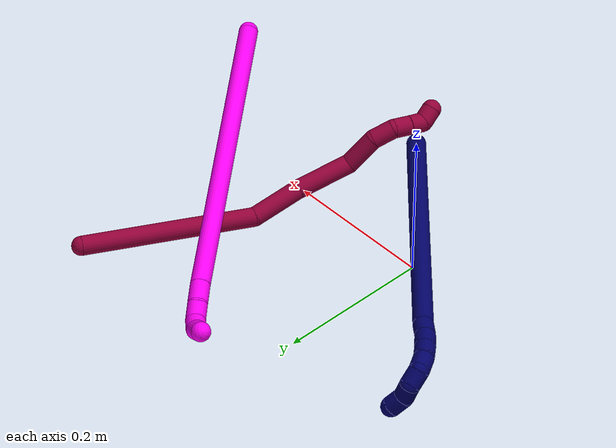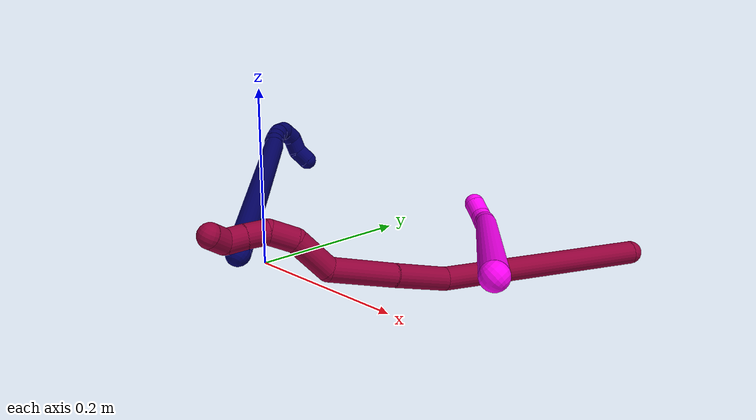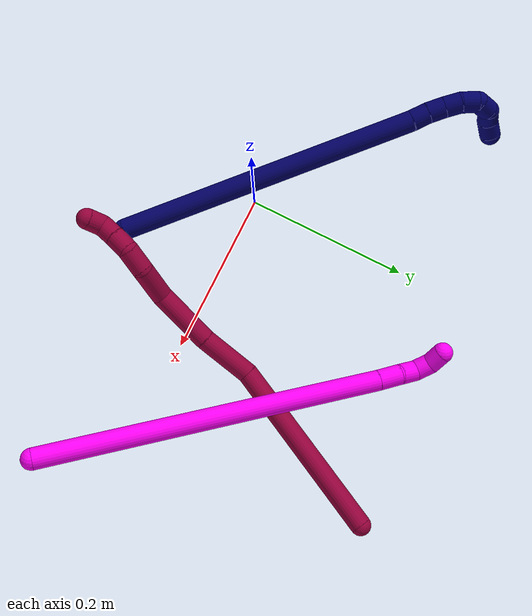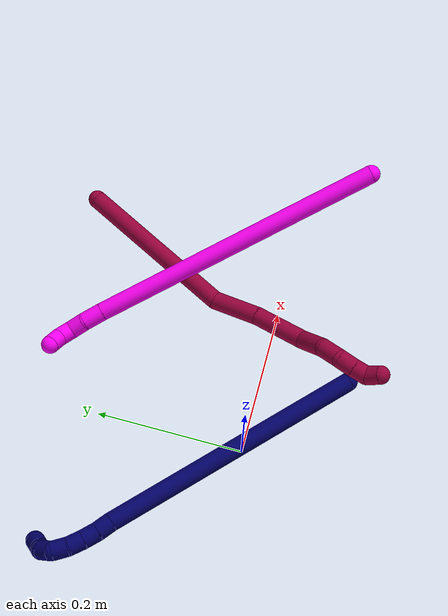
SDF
<sdf version="1.7">
 <world name="default">
  <model name="7">
   <static>0</static>
   <link name="7">
    <collision name="collision-cylinder-e_1_1_4">
     <pose>-0.100532 -0.030173 0.145329 0.204709 -0.595338 -0.063001</pose>
     <geometry><cylinder><radius>0.0125</radius><length>0.35854</length></cylinder></geometry>
     <surface>
      <friction><ode><mu>1.16</mu><mu2>1.16</mu2><slip1>0</slip1><slip2>0</slip2></ode></friction>
      <contact><ode><kp>1e+06</kp><kd>1</kd><max_vel>0</max_vel><min_depth>0.001</min_depth></ode></contact>
     </surface>
    </collision>
    <visual name="visual-cylinder-e_1_1_4">
     <pose>-0.100532 -0.030173 0.145329 0.204709 -0.595338 -0.063001</pose>
     <geometry><cylinder><radius>0.0125</radius><length>0.35854</length></cylinder></geometry>
     <material><ambient>0.003922 0 0.403922 1</ambient></material>
    </visual>
    <collision name="collision-cylinder-e_2_4_5">
     <pose>-0.206787 -0.062942 0.298716 0.311736 -0.594405 -0.096183</pose>
     <geometry><cylinder><radius>0.0125</radius><length>0.020437</length></cylinder></geometry>
     <surface>
      <friction><ode><mu>1.16</mu><mu2>1.16</mu2><slip1>0</slip1><slip2>0</slip2></ode></friction>
      <contact><ode><kp>1e+06</kp><kd>1</kd><max_vel>0</max_vel><min_depth>0.001</min_depth></ode></contact>
     </surface>
    </collision>
    <visual name="visual-cylinder-e_2_4_5">
     <pose>-0.206787 -0.062942 0.298716 0.311736 -0.594405 -0.096183</pose>
     <geometry><cylinder><radius>0.0125</radius><length>0.020437</length></cylinder></geometry>
     <material><ambient>0.003922 0 0.403922 1</ambient></material>
    </visual>
    <collision name="collision-cylinder-e_3_5_6">
     <pose>-0.218155 -0.067028 0.315092 0.177146 -0.588919 -0.053852</pose>
     <geometry><cylinder><radius>0.0125</radius><length>0.020325</length></cylinder></geometry>
     <surface>
      <friction><ode><mu>1.16</mu><mu2>1.16</mu2><slip1>0</slip1><slip2>0</slip2></ode></friction>
      <contact><ode><kp>1e+06</kp><kd>1</kd><max_vel>0</max_vel><min_depth>0.001</min_depth></ode></contact>
     </surface>
    </collision>
    <visual name="visual-cylinder-e_3_5_6">
     <pose>-0.218155 -0.067028 0.315092 0.177146 -0.588919 -0.053852</pose>
     <geometry><cylinder><radius>0.0125</radius><length>0.020325</length></cylinder></geometry>
     <material><ambient>0.003922 0 0.403922 1</ambient></material>
    </visual>
    <collision name="collision-cylinder-e_4_6_7">
     <pose>-0.229069 -0.069361 0.332001 0.09796 -0.548055 -0.027557</pose>
     <geometry><cylinder><radius>0.0125</radius><length>0.020228</length></cylinder></geometry>
     <surface>
      <friction><ode><mu>1.16</mu><mu2>1.16</mu2><slip1>0</slip1><slip2>0</slip2></ode></friction>
      <contact><ode><kp>1e+06</kp><kd>1</kd><max_vel>0</max_vel><min_depth>0.001</min_depth></ode></contact>
     </surface>
    </collision>
    <visual name="visual-cylinder-e_4_6_7">
     <pose>-0.229069 -0.069361 0.332001 0.09796 -0.548055 -0.027557</pose>
     <geometry><cylinder><radius>0.0125</radius><length>0.020228</length></cylinder></geometry>
     <material><ambient>0.003922 0 0.403922 1</ambient></material>
    </visual>
    <collision name="collision-cylinder-e_5_7_8">
     <pose>-0.240368 -0.068711 0.348545 -0.18582 -0.640323 0.06177</pose>
     <geometry><cylinder><radius>0.0125</radius><length>0.020182</length></cylinder></geometry>
     <surface>
      <friction><ode><mu>1.16</mu><mu2>1.16</mu2><slip1>0</slip1><slip2>0</slip2></ode></friction>
      <contact><ode><kp>1e+06</kp><kd>1</kd><max_vel>0</max_vel><min_depth>0.001</min_depth></ode></contact>
     </surface>
    </collision>
    <visual name="visual-cylinder-e_5_7_8">
     <pose>-0.240368 -0.068711 0.348545 -0.18582 -0.640323 0.06177</pose>
     <geometry><cylinder><radius>0.0125</radius><length>0.020182</length></cylinder></geometry>
     <material><ambient>0.003922 0 0.403922 1</ambient></material>
    </visual>
    <collision name="collision-cylinder-e_6_8_9">
     <pose>-0.254179 -0.061239 0.358853 -1.19544 -0.880703 0.620851</pose>
     <geometry><cylinder><radius>0.0125</radius><length>0.020182</length></cylinder></geometry>
     <surface>
      <friction><ode><mu>1.16</mu><mu2>1.16</mu2><slip1>0</slip1><slip2>0</slip2></ode></friction>
      <contact><ode><kp>1e+06</kp><kd>1</kd><max_vel>0</max_vel><min_depth>0.001</min_depth></ode></contact>
     </surface>
    </collision>
    <visual name="visual-cylinder-e_6_8_9">
     <pose>-0.254179 -0.061239 0.358853 -1.19544 -0.880703 0.620851</pose>
     <geometry><cylinder><radius>0.0125</radius><length>0.020182</length></cylinder></geometry>
     <material><ambient>0.003922 0 0.403922 1</ambient></material>
    </visual>
    <collision name="collision-cylinder-e_7_9_10">
     <pose>-0.269022 -0.04943 0.357157 -2.17789 -0.782582 1.33587</pose>
     <geometry><cylinder><radius>0.0125</radius><length>0.02003</length></cylinder></geometry>
     <surface>
      <friction><ode><mu>1.16</mu><mu2>1.16</mu2><slip1>0</slip1><slip2>0</slip2></ode></friction>
      <contact><ode><kp>1e+06</kp><kd>1</kd><max_vel>0</max_vel><min_depth>0.001</min_depth></ode></contact>
     </surface>
    </collision>
    <visual name="visual-cylinder-e_7_9_10">
     <pose>-0.269022 -0.04943 0.357157 -2.17789 -0.782582 1.33587</pose>
     <geometry><cylinder><radius>0.0125</radius><length>0.02003</length></cylinder></geometry>
     <material><ambient>0.003922 0 0.403922 1</ambient></material>
    </visual>
    <collision name="collision-cylinder-e_8_10_2">
     <pose>-0.280976 -0.034986 0.351466 -1.75899 -0.509007 0.609163</pose>
     <geometry><cylinder><radius>0.0125</radius><length>0.020077</length></cylinder></geometry>
     <surface>
      <friction><ode><mu>1.16</mu><mu2>1.16</mu2><slip1>0</slip1><slip2>0</slip2></ode></friction>
      <contact><ode><kp>1e+06</kp><kd>1</kd><max_vel>0</max_vel><min_depth>0.001</min_depth></ode></contact>
     </surface>
    </collision>
    <visual name="visual-cylinder-e_8_10_2">
     <pose>-0.280976 -0.034986 0.351466 -1.75899 -0.509007 0.609163</pose>
     <geometry><cylinder><radius>0.0125</radius><length>0.020077</length></cylinder></geometry>
     <material><ambient>0.003922 0 0.403922 1</ambient></material>
    </visual>
    <collision name="collision-sphere-2">
     <pose>-0.285868 -0.026375 0.349826 0 -0 0</pose>
     <geometry><sphere><radius>0.0125</radius></sphere></geometry>
     <surface>
      <friction><ode><mu>1.16</mu><mu2>1.16</mu2><slip1>0</slip1><slip2>0</slip2></ode></friction>
      <contact><ode><kp>1e+06</kp><kd>1</kd><max_vel>0</max_vel><min_depth>0.001</min_depth></ode></contact>
     </surface>
    </collision>
    <visual name="visual-sphere-2">
     <pose>-0.285868 -0.026375 0.349826 0 -0 0</pose>
     <geometry><sphere><radius>0.0125</radius></sphere></geometry>
     <material><ambient>0.003922 0 0.403922 1</ambient></material>
    </visual>
    <collision name="collision-sphere-10">
     <pose>-0.276084 -0.043597 0.353106 0 -0 0</pose>
     <geometry><sphere><radius>0.0125</radius></sphere></geometry>
     <surface>
      <friction><ode><mu>1.16</mu><mu2>1.16</mu2><slip1>0</slip1><slip2>0</slip2></ode></friction>
      <contact><ode><kp>1e+06</kp><kd>1</kd><max_vel>0</max_vel><min_depth>0.001</min_depth></ode></contact>
     </surface>
    </collision>
    <visual name="visual-sphere-10">
     <pose>-0.276084 -0.043597 0.353106 0 -0 0</pose>
     <geometry><sphere><radius>0.0125</radius></sphere></geometry>
     <material><ambient>0.003922 0 0.403922 1</ambient></material>
    </visual>
    <collision name="collision-sphere-9">
     <pose>-0.261961 -0.055262 0.361208 0 -0 0</pose>
     <geometry><sphere><radius>0.0125</radius></sphere></geometry>
     <surface>
      <friction><ode><mu>1.16</mu><mu2>1.16</mu2><slip1>0</slip1><slip2>0</slip2></ode></friction>
      <contact><ode><kp>1e+06</kp><kd>1</kd><max_vel>0</max_vel><min_depth>0.001</min_depth></ode></contact>
     </surface>
    </collision>
    <visual name="visual-sphere-9">
     <pose>-0.261961 -0.055262 0.361208 0 -0 0</pose>
     <geometry><sphere><radius>0.0125</radius></sphere></geometry>
     <material><ambient>0.003922 0 0.403922 1</ambient></material>
    </visual>
    <collision name="collision-sphere-4">
     <pose>-0.201065 -0.060345 0.290658 0 -0 0</pose>
     <geometry><sphere><radius>0.0125</radius></sphere></geometry>
     <surface>
      <friction><ode><mu>1.16</mu><mu2>1.16</mu2><slip1>0</slip1><slip2>0</slip2></ode></friction>
      <contact><ode><kp>1e+06</kp><kd>1</kd><max_vel>0</max_vel><min_depth>0.001</min_depth></ode></contact>
     </surface>
    </collision>
    <visual name="visual-sphere-4">
     <pose>-0.201065 -0.060345 0.290658 0 -0 0</pose>
     <geometry><sphere><radius>0.0125</radius></sphere></geometry>
     <material><ambient>0.003922 0 0.403922 1</ambient></material>
    </visual>
    <collision name="collision-sphere-1">
     <geometry><sphere><radius>0.0125</radius></sphere></geometry>
     <surface>
      <friction><ode><mu>1.16</mu><mu2>1.16</mu2><slip1>0</slip1><slip2>0</slip2></ode></friction>
      <contact><ode><kp>1e+06</kp><kd>1</kd><max_vel>0</max_vel><min_depth>0.001</min_depth></ode></contact>
     </surface>
    </collision>
    <visual name="visual-sphere-1">
     <geometry><sphere><radius>0.0125</radius></sphere></geometry>
     <material><ambient>0.003922 0 0.403922 1</ambient></material>
    </visual>
    <collision name="collision-sphere-8">
     <pose>-0.246397 -0.067215 0.356498 0 -0 0</pose>
     <geometry><sphere><radius>0.0125</radius></sphere></geometry>
     <surface>
      <friction><ode><mu>1.16</mu><mu2>1.16</mu2><slip1>0</slip1><slip2>0</slip2></ode></friction>
      <contact><ode><kp>1e+06</kp><kd>1</kd><max_vel>0</max_vel><min_depth>0.001</min_depth></ode></contact>
     </surface>
    </collision>
    <visual name="visual-sphere-8">
     <pose>-0.246397 -0.067215 0.356498 0 -0 0</pose>
     <geometry><sphere><radius>0.0125</radius></sphere></geometry>
     <material><ambient>0.003922 0 0.403922 1</ambient></material>
    </visual>
    <collision name="collision-sphere-5">
     <pose>-0.21251 -0.065539 0.306774 0 -0 0</pose>
     <geometry><sphere><radius>0.0125</radius></sphere></geometry>
     <surface>
      <friction><ode><mu>1.16</mu><mu2>1.16</mu2><slip1>0</slip1><slip2>0</slip2></ode></friction>
      <contact><ode><kp>1e+06</kp><kd>1</kd><max_vel>0</max_vel><min_depth>0.001</min_depth></ode></contact>
     </surface>
    </collision>
    <visual name="visual-sphere-5">
     <pose>-0.21251 -0.065539 0.306774 0 -0 0</pose>
     <geometry><sphere><radius>0.0125</radius></sphere></geometry>
     <material><ambient>0.003922 0 0.403922 1</ambient></material>
    </visual>
    <collision name="collision-sphere-6">
     <pose>-0.2238 -0.068517 0.32341 0 -0 0</pose>
     <geometry><sphere><radius>0.0125</radius></sphere></geometry>
     <surface>
      <friction><ode><mu>1.16</mu><mu2>1.16</mu2><slip1>0</slip1><slip2>0</slip2></ode></friction>
      <contact><ode><kp>1e+06</kp><kd>1</kd><max_vel>0</max_vel><min_depth>0.001</min_depth></ode></contact>
     </surface>
    </collision>
    <visual name="visual-sphere-6">
     <pose>-0.2238 -0.068517 0.32341 0 -0 0</pose>
     <geometry><sphere><radius>0.0125</radius></sphere></geometry>
     <material><ambient>0.003922 0 0.403922 1</ambient></material>
    </visual>
    <collision name="collision-sphere-7">
     <pose>-0.234339 -0.070206 0.340592 0 -0 0</pose>
     <geometry><sphere><radius>0.0125</radius></sphere></geometry>
     <surface>
      <friction><ode><mu>1.16</mu><mu2>1.16</mu2><slip1>0</slip1><slip2>0</slip2></ode></friction>
      <contact><ode><kp>1e+06</kp><kd>1</kd><max_vel>0</max_vel><min_depth>0.001</min_depth></ode></contact>
     </surface>
    </collision>
    <visual name="visual-sphere-7">
     <pose>-0.234339 -0.070206 0.340592 0 -0 0</pose>
     <geometry><sphere><radius>0.0125</radius></sphere></geometry>
     <material><ambient>0.003922 0 0.403922 1</ambient></material>
    </visual>
    <inertial>
     <pose>-0.140698 -0.03837 0.199635 0 -0 0</pose>
     <mass>0.5</mass>
     <inertia>
      <ixx>0.002971</ixx>
      <ixy>0</ixy>
      <ixz>0</ixz>
      <iyy>0.003601</iyy>
      <iyz>0</iyz>
      <izz>0.002842</izz>
     </inertia>
    </inertial>
   </link>
   <pose>0.111891 -0.113395 0.068356 -0.46827 -0.890837 -0.534319</pose>
  </model>
  <model name="8">
   <static>0</static>
   <link name="8">
    <collision name="collision-cylinder-e_1_1_4">
     <pose>-0.043795 -0.088208 -0.052734 2.10962 -0.402844 -0.691058</pose>
     <geometry><cylinder><radius>0.0125</radius><length>0.223423</length></cylinder></geometry>
     <surface>
      <friction><ode><mu>1.16</mu><mu2>1.16</mu2><slip1>0</slip1><slip2>0</slip2></ode></friction>
      <contact><ode><kp>1e+06</kp><kd>1</kd><max_vel>0</max_vel><min_depth>0.001</min_depth></ode></contact>
     </surface>
    </collision>
    <visual name="visual-cylinder-e_1_1_4">
     <pose>-0.043795 -0.088208 -0.052734 2.10962 -0.402844 -0.691058</pose>
     <geometry><cylinder><radius>0.0125</radius><length>0.223423</length></cylinder></geometry>
     <material><ambient>0.584314 0 0.227451 1</ambient></material>
    </visual>
    <collision name="collision-cylinder-e_2_4_5">
     <pose>-0.094144 -0.208401 -0.111545 1.75857 -0.19865 -0.239591</pose>
     <geometry><cylinder><radius>0.0125</radius><length>0.066422</length></cylinder></geometry>
     <surface>
      <friction><ode><mu>1.16</mu><mu2>1.16</mu2><slip1>0</slip1><slip2>0</slip2></ode></friction>
      <contact><ode><kp>1e+06</kp><kd>1</kd><max_vel>0</max_vel><min_depth>0.001</min_depth></ode></contact>
     </surface>
    </collision>
    <visual name="visual-cylinder-e_2_4_5">
     <pose>-0.094144 -0.208401 -0.111545 1.75857 -0.19865 -0.239591</pose>
     <geometry><cylinder><radius>0.0125</radius><length>0.066422</length></cylinder></geometry>
     <material><ambient>0.584314 0 0.227451 1</ambient></material>
    </visual>
    <collision name="collision-cylinder-e_3_5_6">
     <pose>-0.112048 -0.274488 -0.125364 1.79402 -0.313839 -0.391258</pose>
     <geometry><cylinder><radius>0.0125</radius><length>0.073528</length></cylinder></geometry>
     <surface>
      <friction><ode><mu>1.16</mu><mu2>1.16</mu2><slip1>0</slip1><slip2>0</slip2></ode></friction>
      <contact><ode><kp>1e+06</kp><kd>1</kd><max_vel>0</max_vel><min_depth>0.001</min_depth></ode></contact>
     </surface>
    </collision>
    <visual name="visual-cylinder-e_3_5_6">
     <pose>-0.112048 -0.274488 -0.125364 1.79402 -0.313839 -0.391258</pose>
     <geometry><cylinder><radius>0.0125</radius><length>0.073528</length></cylinder></geometry>
     <material><ambient>0.584314 0 0.227451 1</ambient></material>
    </visual>
    <collision name="collision-cylinder-e_4_6_7">
     <pose>-0.13321 -0.327719 -0.125445 1.18993 -0.444406 -0.303462</pose>
     <geometry><cylinder><radius>0.0125</radius><length>0.045649</length></cylinder></geometry>
     <surface>
      <friction><ode><mu>1.16</mu><mu2>1.16</mu2><slip1>0</slip1><slip2>0</slip2></ode></friction>
      <contact><ode><kp>1e+06</kp><kd>1</kd><max_vel>0</max_vel><min_depth>0.001</min_depth></ode></contact>
     </surface>
    </collision>
    <visual name="visual-cylinder-e_4_6_7">
     <pose>-0.13321 -0.327719 -0.125445 1.18993 -0.444406 -0.303462</pose>
     <geometry><cylinder><radius>0.0125</radius><length>0.045649</length></cylinder></geometry>
     <material><ambient>0.584314 0 0.227451 1</ambient></material>
    </visual>
    <collision name="collision-cylinder-e_5_7_8">
     <pose>-0.149395 -0.359558 -0.118679 1.64104 -0.463855 -0.496312</pose>
     <geometry><cylinder><radius>0.0125</radius><length>0.028489</length></cylinder></geometry>
     <surface>
      <friction><ode><mu>1.16</mu><mu2>1.16</mu2><slip1>0</slip1><slip2>0</slip2></ode></friction>
      <contact><ode><kp>1e+06</kp><kd>1</kd><max_vel>0</max_vel><min_depth>0.001</min_depth></ode></contact>
     </surface>
    </collision>
    <visual name="visual-cylinder-e_5_7_8">
     <pose>-0.149395 -0.359558 -0.118679 1.64104 -0.463855 -0.496312</pose>
     <geometry><cylinder><radius>0.0125</radius><length>0.028489</length></cylinder></geometry>
     <material><ambient>0.584314 0 0.227451 1</ambient></material>
    </visual>
    <collision name="collision-cylinder-e_6_8_9">
     <pose>-0.158697 -0.381487 -0.125216 2.11994 -0.264522 -0.466129</pose>
     <geometry><cylinder><radius>0.0125</radius><length>0.022401</length></cylinder></geometry>
     <surface>
      <friction><ode><mu>1.16</mu><mu2>1.16</mu2><slip1>0</slip1><slip2>0</slip2></ode></friction>
      <contact><ode><kp>1e+06</kp><kd>1</kd><max_vel>0</max_vel><min_depth>0.001</min_depth></ode></contact>
     </surface>
    </collision>
    <visual name="visual-cylinder-e_6_8_9">
     <pose>-0.158697 -0.381487 -0.125216 2.11994 -0.264522 -0.466129</pose>
     <geometry><cylinder><radius>0.0125</radius><length>0.022401</length></cylinder></geometry>
     <material><ambient>0.584314 0 0.227451 1</ambient></material>
    </visual>
    <collision name="collision-cylinder-e_7_9_10">
     <pose>-0.163564 -0.39897 -0.136152 2.14059 -0.195114 -0.354114</pose>
     <geometry><cylinder><radius>0.0125</radius><length>0.020004</length></cylinder></geometry>
     <surface>
      <friction><ode><mu>1.16</mu><mu2>1.16</mu2><slip1>0</slip1><slip2>0</slip2></ode></friction>
      <contact><ode><kp>1e+06</kp><kd>1</kd><max_vel>0</max_vel><min_depth>0.001</min_depth></ode></contact>
     </surface>
    </collision>
    <visual name="visual-cylinder-e_7_9_10">
     <pose>-0.163564 -0.39897 -0.136152 2.14059 -0.195114 -0.354114</pose>
     <geometry><cylinder><radius>0.0125</radius><length>0.020004</length></cylinder></geometry>
     <material><ambient>0.584314 0 0.227451 1</ambient></material>
    </visual>
    <collision name="collision-cylinder-e_8_10_2">
     <pose>-0.165114 -0.417144 -0.139877 1.41383 0.038759 0.033108</pose>
     <geometry><cylinder><radius>0.0125</radius><length>0.020084</length></cylinder></geometry>
     <surface>
      <friction><ode><mu>1.16</mu><mu2>1.16</mu2><slip1>0</slip1><slip2>0</slip2></ode></friction>
      <contact><ode><kp>1e+06</kp><kd>1</kd><max_vel>0</max_vel><min_depth>0.001</min_depth></ode></contact>
     </surface>
    </collision>
    <visual name="visual-cylinder-e_8_10_2">
     <pose>-0.165114 -0.417144 -0.139877 1.41383 0.038759 0.033108</pose>
     <geometry><cylinder><radius>0.0125</radius><length>0.020084</length></cylinder></geometry>
     <material><ambient>0.584314 0 0.227451 1</ambient></material>
    </visual>
    <collision name="collision-sphere-2">
     <pose>-0.164725 -0.427055 -0.138308 0 -0 0</pose>
     <geometry><sphere><radius>0.0125</radius></sphere></geometry>
     <surface>
      <friction><ode><mu>1.16</mu><mu2>1.16</mu2><slip1>0</slip1><slip2>0</slip2></ode></friction>
      <contact><ode><kp>1e+06</kp><kd>1</kd><max_vel>0</max_vel><min_depth>0.001</min_depth></ode></contact>
     </surface>
    </collision>
    <visual name="visual-sphere-2">
     <pose>-0.164725 -0.427055 -0.138308 0 -0 0</pose>
     <geometry><sphere><radius>0.0125</radius></sphere></geometry>
     <material><ambient>0.584314 0 0.227451 1</ambient></material>
    </visual>
    <collision name="collision-sphere-10">
     <pose>-0.165503 -0.407232 -0.141445 0 -0 0</pose>
     <geometry><sphere><radius>0.0125</radius></sphere></geometry>
     <surface>
      <friction><ode><mu>1.16</mu><mu2>1.16</mu2><slip1>0</slip1><slip2>0</slip2></ode></friction>
      <contact><ode><kp>1e+06</kp><kd>1</kd><max_vel>0</max_vel><min_depth>0.001</min_depth></ode></contact>
     </surface>
    </collision>
    <visual name="visual-sphere-10">
     <pose>-0.165503 -0.407232 -0.141445 0 -0 0</pose>
     <geometry><sphere><radius>0.0125</radius></sphere></geometry>
     <material><ambient>0.584314 0 0.227451 1</ambient></material>
    </visual>
    <collision name="collision-sphere-9">
     <pose>-0.161625 -0.390708 -0.130859 0 -0 0</pose>
     <geometry><sphere><radius>0.0125</radius></sphere></geometry>
     <surface>
      <friction><ode><mu>1.16</mu><mu2>1.16</mu2><slip1>0</slip1><slip2>0</slip2></ode></friction>
      <contact><ode><kp>1e+06</kp><kd>1</kd><max_vel>0</max_vel><min_depth>0.001</min_depth></ode></contact>
     </surface>
    </collision>
    <visual name="visual-sphere-9">
     <pose>-0.161625 -0.390708 -0.130859 0 -0 0</pose>
     <geometry><sphere><radius>0.0125</radius></sphere></geometry>
     <material><ambient>0.584314 0 0.227451 1</ambient></material>
    </visual>
    <collision name="collision-sphere-4">
     <pose>-0.08759 -0.176416 -0.105467 0 -0 0</pose>
     <geometry><sphere><radius>0.0125</radius></sphere></geometry>
     <surface>
      <friction><ode><mu>1.16</mu><mu2>1.16</mu2><slip1>0</slip1><slip2>0</slip2></ode></friction>
      <contact><ode><kp>1e+06</kp><kd>1</kd><max_vel>0</max_vel><min_depth>0.001</min_depth></ode></contact>
     </surface>
    </collision>
    <visual name="visual-sphere-4">
     <pose>-0.08759 -0.176416 -0.105467 0 -0 0</pose>
     <geometry><sphere><radius>0.0125</radius></sphere></geometry>
     <material><ambient>0.584314 0 0.227451 1</ambient></material>
    </visual>
    <collision name="collision-sphere-1">
     <geometry><sphere><radius>0.0125</radius></sphere></geometry>
     <surface>
      <friction><ode><mu>1.16</mu><mu2>1.16</mu2><slip1>0</slip1><slip2>0</slip2></ode></friction>
      <contact><ode><kp>1e+06</kp><kd>1</kd><max_vel>0</max_vel><min_depth>0.001</min_depth></ode></contact>
     </surface>
    </collision>
    <visual name="visual-sphere-1">
     <geometry><sphere><radius>0.0125</radius></sphere></geometry>
     <material><ambient>0.584314 0 0.227451 1</ambient></material>
    </visual>
    <collision name="collision-sphere-8">
     <pose>-0.155768 -0.372265 -0.119573 0 -0 0</pose>
     <geometry><sphere><radius>0.0125</radius></sphere></geometry>
     <surface>
      <friction><ode><mu>1.16</mu><mu2>1.16</mu2><slip1>0</slip1><slip2>0</slip2></ode></friction>
      <contact><ode><kp>1e+06</kp><kd>1</kd><max_vel>0</max_vel><min_depth>0.001</min_depth></ode></contact>
     </surface>
    </collision>
    <visual name="visual-sphere-8">
     <pose>-0.155768 -0.372265 -0.119573 0 -0 0</pose>
     <geometry><sphere><radius>0.0125</radius></sphere></geometry>
     <material><ambient>0.584314 0 0.227451 1</ambient></material>
    </visual>
    <collision name="collision-sphere-5">
     <pose>-0.100698 -0.240387 -0.117623 0 -0 0</pose>
     <geometry><sphere><radius>0.0125</radius></sphere></geometry>
     <surface>
      <friction><ode><mu>1.16</mu><mu2>1.16</mu2><slip1>0</slip1><slip2>0</slip2></ode></friction>
      <contact><ode><kp>1e+06</kp><kd>1</kd><max_vel>0</max_vel><min_depth>0.001</min_depth></ode></contact>
     </surface>
    </collision>
    <visual name="visual-sphere-5">
     <pose>-0.100698 -0.240387 -0.117623 0 -0 0</pose>
     <geometry><sphere><radius>0.0125</radius></sphere></geometry>
     <material><ambient>0.584314 0 0.227451 1</ambient></material>
    </visual>
    <collision name="collision-sphere-6">
     <pose>-0.123397 -0.308588 -0.133105 0 -0 0</pose>
     <geometry><sphere><radius>0.0125</radius></sphere></geometry>
     <surface>
      <friction><ode><mu>1.16</mu><mu2>1.16</mu2><slip1>0</slip1><slip2>0</slip2></ode></friction>
      <contact><ode><kp>1e+06</kp><kd>1</kd><max_vel>0</max_vel><min_depth>0.001</min_depth></ode></contact>
     </surface>
    </collision>
    <visual name="visual-sphere-6">
     <pose>-0.123397 -0.308588 -0.133105 0 -0 0</pose>
     <geometry><sphere><radius>0.0125</radius></sphere></geometry>
     <material><ambient>0.584314 0 0.227451 1</ambient></material>
    </visual>
    <collision name="collision-sphere-7">
     <pose>-0.143022 -0.34685 -0.117785 0 -0 0</pose>
     <geometry><sphere><radius>0.0125</radius></sphere></geometry>
     <surface>
      <friction><ode><mu>1.16</mu><mu2>1.16</mu2><slip1>0</slip1><slip2>0</slip2></ode></friction>
      <contact><ode><kp>1e+06</kp><kd>1</kd><max_vel>0</max_vel><min_depth>0.001</min_depth></ode></contact>
     </surface>
    </collision>
    <visual name="visual-sphere-7">
     <pose>-0.143022 -0.34685 -0.117785 0 -0 0</pose>
     <geometry><sphere><radius>0.0125</radius></sphere></geometry>
     <material><ambient>0.584314 0 0.227451 1</ambient></material>
    </visual>
    <inertial>
     <pose>-0.089513 -0.207681 -0.091708 0 -0 0</pose>
     <mass>0.5</mass>
     <inertia>
      <ixx>0.00015</ixx>
      <ixy>0</ixy>
      <ixz>0</ixz>
      <iyy>-0.000781</iyy>
      <iyz>0</iyz>
      <izz>0.001195</izz>
     </inertia>
    </inertial>
   </link>
   <pose>0.294741 0.288503 0.017572 -0.416496 0.213006 -0.04572</pose>
  </model>
  <model name="10">
   <static>0</static>
   <link name="10">
    <collision name="collision-cylinder-e_1_1_4">
     <pose>-0.132487 0.15347 -0.023889 -1.72522 -0.706236 0.81283</pose>
     <geometry><cylinder><radius>0.0125</radius><length>0.408297</length></cylinder></geometry>
     <surface>
      <friction><ode><mu>1.16</mu><mu2>1.16</mu2><slip1>0</slip1><slip2>0</slip2></ode></friction>
      <contact><ode><kp>1e+06</kp><kd>1</kd><max_vel>0</max_vel><min_depth>0.001</min_depth></ode></contact>
     </surface>
    </collision>
    <visual name="visual-cylinder-e_1_1_4">
     <pose>-0.132487 0.15347 -0.023889 -1.72522 -0.706236 0.81283</pose>
     <geometry><cylinder><radius>0.0125</radius><length>0.408297</length></cylinder></geometry>
     <material><ambient>1 0 0.964706 1</ambient></material>
    </visual>
    <collision name="collision-cylinder-e_2_4_5">
     <pose>-0.27386 0.317676 -0.049965 -1.77171 -0.681406 0.818957</pose>
     <geometry><cylinder><radius>0.0125</radius><length>0.028213</length></cylinder></geometry>
     <surface>
      <friction><ode><mu>1.16</mu><mu2>1.16</mu2><slip1>0</slip1><slip2>0</slip2></ode></friction>
      <contact><ode><kp>1e+06</kp><kd>1</kd><max_vel>0</max_vel><min_depth>0.001</min_depth></ode></contact>
     </surface>
    </collision>
    <visual name="visual-cylinder-e_2_4_5">
     <pose>-0.27386 0.317676 -0.049965 -1.77171 -0.681406 0.818957</pose>
     <geometry><cylinder><radius>0.0125</radius><length>0.028213</length></cylinder></geometry>
     <material><ambient>1 0 0.964706 1</ambient></material>
    </visual>
    <collision name="collision-cylinder-e_3_5_6">
     <pose>-0.288601 0.337915 -0.052089 -1.56425 -0.552255 0.548828</pose>
     <geometry><cylinder><radius>0.0125</radius><length>0.022324</length></cylinder></geometry>
     <surface>
      <friction><ode><mu>1.16</mu><mu2>1.16</mu2><slip1>0</slip1><slip2>0</slip2></ode></friction>
      <contact><ode><kp>1e+06</kp><kd>1</kd><max_vel>0</max_vel><min_depth>0.001</min_depth></ode></contact>
     </surface>
    </collision>
    <visual name="visual-cylinder-e_3_5_6">
     <pose>-0.288601 0.337915 -0.052089 -1.56425 -0.552255 0.548828</pose>
     <geometry><cylinder><radius>0.0125</radius><length>0.022324</length></cylinder></geometry>
     <material><ambient>1 0 0.964706 1</ambient></material>
    </visual>
    <collision name="collision-cylinder-e_4_6_7">
     <pose>-0.301084 0.353018 -0.057297 -2.32574 -0.711291 1.41995</pose>
     <geometry><cylinder><radius>0.0125</radius><length>0.020302</length></cylinder></geometry>
     <surface>
      <friction><ode><mu>1.16</mu><mu2>1.16</mu2><slip1>0</slip1><slip2>0</slip2></ode></friction>
      <contact><ode><kp>1e+06</kp><kd>1</kd><max_vel>0</max_vel><min_depth>0.001</min_depth></ode></contact>
     </surface>
    </collision>
    <visual name="visual-cylinder-e_4_6_7">
     <pose>-0.301084 0.353018 -0.057297 -2.32574 -0.711291 1.41995</pose>
     <geometry><cylinder><radius>0.0125</radius><length>0.020302</length></cylinder></geometry>
     <material><ambient>1 0 0.964706 1</ambient></material>
    </visual>
    <collision name="collision-cylinder-e_5_7_2">
     <pose>-0.312832 0.361016 -0.071331 -2.87457 -0.513211 2.19537</pose>
     <geometry><cylinder><radius>0.0125</radius><length>0.020863</length></cylinder></geometry>
     <surface>
      <friction><ode><mu>1.16</mu><mu2>1.16</mu2><slip1>0</slip1><slip2>0</slip2></ode></friction>
      <contact><ode><kp>1e+06</kp><kd>1</kd><max_vel>0</max_vel><min_depth>0.001</min_depth></ode></contact>
     </surface>
    </collision>
    <visual name="visual-cylinder-e_5_7_2">
     <pose>-0.312832 0.361016 -0.071331 -2.87457 -0.513211 2.19537</pose>
     <geometry><cylinder><radius>0.0125</radius><length>0.020863</length></cylinder></geometry>
     <material><ambient>1 0 0.964706 1</ambient></material>
    </visual>
    <collision name="collision-sphere-2">
     <pose>-0.317954 0.363414 -0.080097 0 -0 0</pose>
     <geometry><sphere><radius>0.0125</radius></sphere></geometry>
     <surface>
      <friction><ode><mu>1.16</mu><mu2>1.16</mu2><slip1>0</slip1><slip2>0</slip2></ode></friction>
      <contact><ode><kp>1e+06</kp><kd>1</kd><max_vel>0</max_vel><min_depth>0.001</min_depth></ode></contact>
     </surface>
    </collision>
    <visual name="visual-sphere-2">
     <pose>-0.317954 0.363414 -0.080097 0 -0 0</pose>
     <geometry><sphere><radius>0.0125</radius></sphere></geometry>
     <material><ambient>1 0 0.964706 1</ambient></material>
    </visual>
    <collision name="collision-sphere-7">
     <pose>-0.307711 0.358618 -0.062566 0 -0 0</pose>
     <geometry><sphere><radius>0.0125</radius></sphere></geometry>
     <surface>
      <friction><ode><mu>1.16</mu><mu2>1.16</mu2><slip1>0</slip1><slip2>0</slip2></ode></friction>
      <contact><ode><kp>1e+06</kp><kd>1</kd><max_vel>0</max_vel><min_depth>0.001</min_depth></ode></contact>
     </surface>
    </collision>
    <visual name="visual-sphere-7">
     <pose>-0.307711 0.358618 -0.062566 0 -0 0</pose>
     <geometry><sphere><radius>0.0125</radius></sphere></geometry>
     <material><ambient>1 0 0.964706 1</ambient></material>
    </visual>
    <collision name="collision-sphere-6">
     <pose>-0.294457 0.347417 -0.052027 0 -0 0</pose>
     <geometry><sphere><radius>0.0125</radius></sphere></geometry>
     <surface>
      <friction><ode><mu>1.16</mu><mu2>1.16</mu2><slip1>0</slip1><slip2>0</slip2></ode></friction>
      <contact><ode><kp>1e+06</kp><kd>1</kd><max_vel>0</max_vel><min_depth>0.001</min_depth></ode></contact>
     </surface>
    </collision>
    <visual name="visual-sphere-6">
     <pose>-0.294457 0.347417 -0.052027 0 -0 0</pose>
     <geometry><sphere><radius>0.0125</radius></sphere></geometry>
     <material><ambient>1 0 0.964706 1</ambient></material>
    </visual>
    <collision name="collision-sphere-5">
     <pose>-0.282745 0.328412 -0.052152 0 -0 0</pose>
     <geometry><sphere><radius>0.0125</radius></sphere></geometry>
     <surface>
      <friction><ode><mu>1.16</mu><mu2>1.16</mu2><slip1>0</slip1><slip2>0</slip2></ode></friction>
      <contact><ode><kp>1e+06</kp><kd>1</kd><max_vel>0</max_vel><min_depth>0.001</min_depth></ode></contact>
     </surface>
    </collision>
    <visual name="visual-sphere-5">
     <pose>-0.282745 0.328412 -0.052152 0 -0 0</pose>
     <geometry><sphere><radius>0.0125</radius></sphere></geometry>
     <material><ambient>1 0 0.964706 1</ambient></material>
    </visual>
    <collision name="collision-sphere-1">
     <geometry><sphere><radius>0.0125</radius></sphere></geometry>
     <surface>
      <friction><ode><mu>1.16</mu><mu2>1.16</mu2><slip1>0</slip1><slip2>0</slip2></ode></friction>
      <contact><ode><kp>1e+06</kp><kd>1</kd><max_vel>0</max_vel><min_depth>0.001</min_depth></ode></contact>
     </surface>
    </collision>
    <visual name="visual-sphere-1">
     <geometry><sphere><radius>0.0125</radius></sphere></geometry>
     <material><ambient>1 0 0.964706 1</ambient></material>
    </visual>
    <collision name="collision-sphere-4">
     <pose>-0.264975 0.30694 -0.047778 0 -0 0</pose>
     <geometry><sphere><radius>0.0125</radius></sphere></geometry>
     <surface>
      <friction><ode><mu>1.16</mu><mu2>1.16</mu2><slip1>0</slip1><slip2>0</slip2></ode></friction>
      <contact><ode><kp>1e+06</kp><kd>1</kd><max_vel>0</max_vel><min_depth>0.001</min_depth></ode></contact>
     </surface>
    </collision>
    <visual name="visual-sphere-4">
     <pose>-0.264975 0.30694 -0.047778 0 -0 0</pose>
     <geometry><sphere><radius>0.0125</radius></sphere></geometry>
     <material><ambient>1 0 0.964706 1</ambient></material>
    </visual>
    <inertial>
     <pose>-0.161806 0.187734 -0.029956 0 -0 0</pose>
     <mass>0.5</mass>
     <inertia>
      <ixx>0.0061</ixx>
      <ixy>0</ixy>
      <ixz>0</ixz>
      <iyy>0.005226</iyy>
      <iyz>0</iyz>
      <izz>-0.000591</izz>
     </inertia>
    </inertial>
   </link>
   <pose>0.38821 -0.074791 0.112507 -2.33238 0.35165 -1.54306</pose>
  </model>
 </world>
</sdf>
